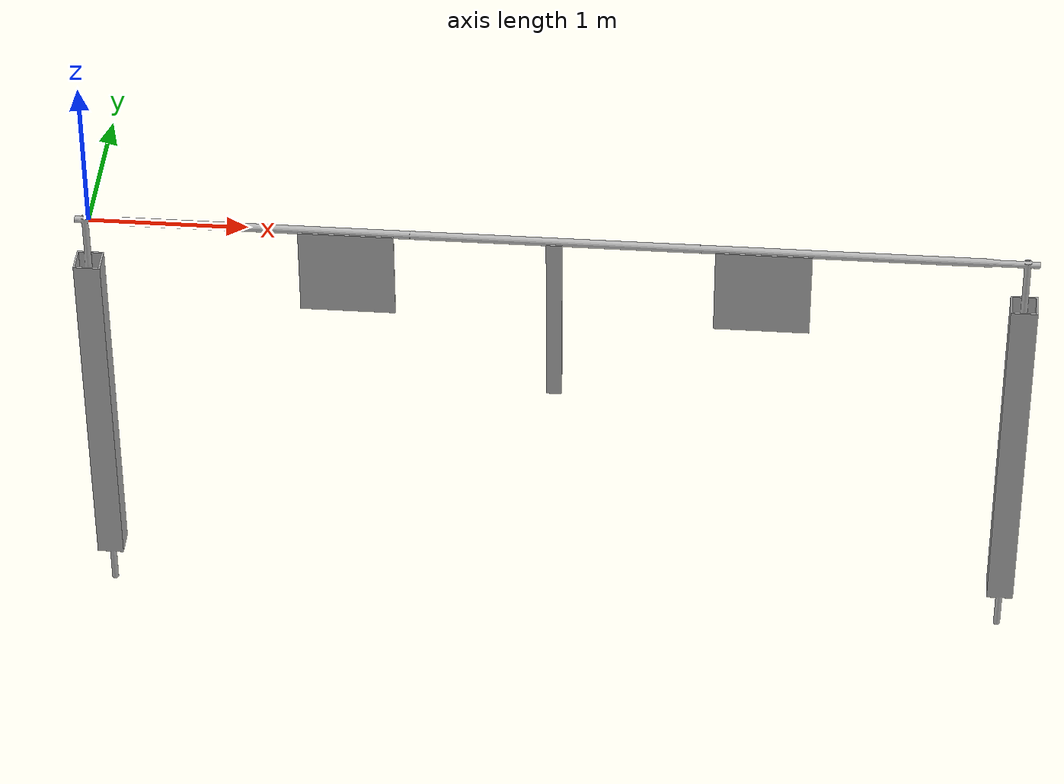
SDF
<?xml version="1.0"?>
<sdf version="1.7">
	<model name="gate">
		<static>true</static>

		<link name="base_link">
			<inertial>
				<pose>0 0 0 0 0 0</pose>
				<mass>0.9</mass>
				<inertia>
					<ixx>1.0</ixx>
					<ixy>0.0</ixy>
					<ixz>0.0</ixz>
					<iyy>1.0</iyy>
					<iyz>0.0</iyz>
					<izz>1.0</izz>
				</inertia>
			</inertial>

			<visual name="visual_mesh">
				<pose>0 0 0 0 0 0</pose>
				<geometry>
					<mesh>
						<scale>0.05 0.05 0.05</scale>
						<uri>model://gate/meshes/gateassembly.obj</uri>
					</mesh>
				</geometry>
			</visual>

			<collision name="hitbox">
				<pose>0 0 0 0 0 0</pose>
				<geometry>
					<mesh>
						<scale>0.05 0.05 0.05</scale>
						<uri>model://gate/meshes/gateassembly.obj</uri>
					</mesh>
				</geometry>
			</collision>

			<material>
				<ambient>0.2 0.2 0.2 1</ambient>
				<diffuse>0.8 0.8 0.8 1</diffuse>
				<specular>0.1 0.1 0.1 1</specular>
				<emissive>0 0 0 1</emissive>
			</material>

		</link>

	</model>
</sdf>
